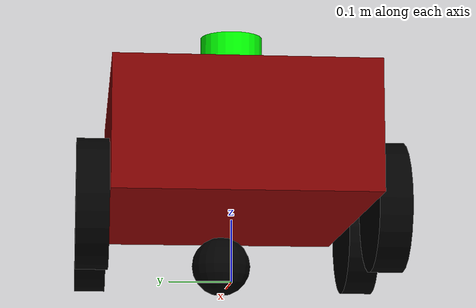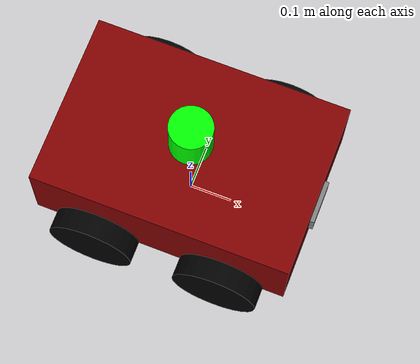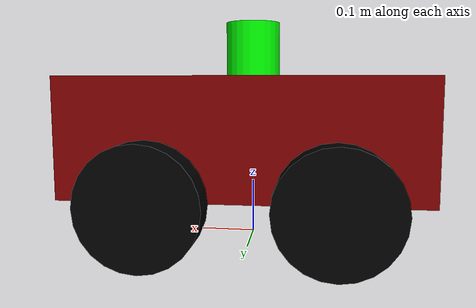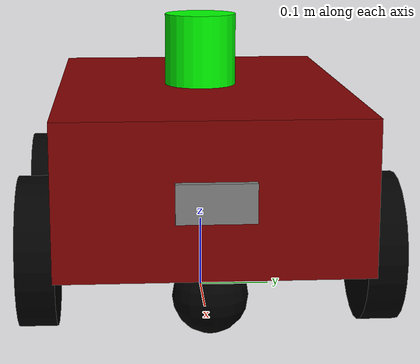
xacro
<?xml version="1.0"?>
<robot name="my_mobile" xmlns:xacro="http://www.ros.org/wiki/xacro">

   <xacro:include filename="common_properties.xacro" />
   <xacro:include filename="mobile_base.xacro" />
   <xacro:include filename="mobile_base_gazebo.xacro" />
    <xacro:include filename="camera.xacro" />
    <xacro:include filename="lidar.xacro" />

   </robot>

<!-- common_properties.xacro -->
<robot name="my_mobile" xmlns:xacro="http://www.ros.org/wiki/xacro">

  <!-- Materials -->
  <material name="maroon">
    <color rgba="0.5 0 0 1"/> <!-- Base = Maroon -->
  </material>

  <material name="black">
    <color rgba="0 0 0 1"/> <!-- Wheels = Black -->
  </material>

  <material name="grey">
    <color rgba="0.5 0.5 0.5 1"/> <!-- Caster wheel = Grey -->
  </material>

  <!-- Inertia Macros -->
  <xacro:macro name="box_inertia" params="m l w h xyz rpy">
    <inertial>
      <origin xyz="${xyz}" rpy="${rpy}" />
      <mass value="${m}" />
      <inertia ixx="${(m/12) * (h*h + l*l)}" ixy="0" ixz="0"
               iyy="${(m/12) * (w*w + l*l)}" iyz="0"
               izz="${(m/12) * (w*w + h*h)}" />
    </inertial>
  </xacro:macro>

  <xacro:macro name="cylinder_inertia" params="m r h xyz rpy">
    <inertial>
      <origin xyz="${xyz}" rpy="${rpy}" />
      <mass value="${m}" />
      <inertia ixx="${(m/12) * (3*r*r + h*h)}" ixy="0" ixz="0"
               iyy="${(m/12) * (3*r*r + h*h)}" iyz="0"
               izz="${(m/2) * (r*r)}" />
    </inertial>
  </xacro:macro>

  <xacro:macro name="sphere_inertia" params="m r xyz rpy">
    <inertial>
      <origin xyz="${xyz}" rpy="${rpy}" />
      <mass value="${m}" />
      <inertia ixx="${(2/5) * m * r * r}" ixy="0" ixz="0"
               iyy="${(2/5) * m * r * r}" iyz="0"
               izz="${(2/5) * m * r * r}" />
    </inertial>
  </xacro:macro>

</robot>

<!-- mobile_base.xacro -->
<robot name="my_mobile" xmlns:xacro="http://www.ros.org/wiki/xacro">
    <xacro:property name="base_length" value="0.6" />
    <xacro:property name="base_width" value="0.4" />
    <xacro:property name="base_height" value="0.2" />
    <xacro:property name="wheel_radius" value="0.1" />
    <xacro:property name="wheel_length" value="0.05" />

    <link name="base_footprint" />

    <!-- Base Link -->
    <link name="base_link">
        <visual>
            <geometry>
                <box size="${base_length} ${base_width} ${base_height}" />
            </geometry>
            <origin xyz="0 0 ${base_height / 2.0}" rpy="0 0 0" />
            <material name="maroon">
                <color rgba="0.5 0 0 1"/>
            </material>
        </visual>
        <collision>
            <geometry>
                <box size="${base_length} ${base_width} ${base_height}" />
            </geometry>
            <origin xyz="0 0 ${base_height / 2.0}" rpy="0 0 0" />
        </collision>

        <xacro:box_inertia m="5.0" l="${2*base_length}" w="${2*base_width}" h="${2*base_height}"
                           xyz="0 0 ${base_height / 2.0}" rpy="0 0 0" />
    </link>

    <!-- Wheel Macro -->
    <xacro:macro name="wheel_link" params="prefix color">
        <link name="${prefix}_wheel_link">
            <visual>
                <geometry>
                    <cylinder radius="${wheel_radius}" length="${wheel_length}" />
                </geometry>
                <origin xyz="0 0 0" rpy="${pi / 2.0} 0 0" />
                <material name="${prefix}_color">
                    <color rgba="${color}"/>
                </material>
            </visual>
            <collision>
                <geometry>
                    <cylinder radius="${wheel_radius}" length="${wheel_length}" />
                </geometry>
                <origin xyz="0 0 0" rpy="${pi / 2.0} 0 0" />
            </collision>
            <xacro:cylinder_inertia m="1.0" r="${2*wheel_radius}" h="${2*wheel_length}"
                                    xyz="0 0 0" rpy="${pi / 2.0} 0 0" />
        </link>
    </xacro:macro>

    <!-- Right & Left Wheels with Different Colors -->
    <xacro:wheel_link prefix="right" color="0 0 0 1"/>  <!-- Blue -->
    <xacro:wheel_link prefix="left" color="0 0 0 1"/>   <!-- Green -->
    <xacro:wheel_link prefix="front_right" color="0 0 0 1"/>  <!-- Red -->
    <xacro:wheel_link prefix="front_left" color="0 0 0 1"/>   <!-- Yellow -->

    <!-- Caster Wheel -->
    <link name="caster_wheel_link">
        <visual>
            <geometry>
                <sphere radius="${wheel_radius / 2.0}" />
            </geometry>
            <origin xyz="0 0 0" rpy="0 0 0" />
            <material name="black">
                <color rgba="0 0 0 1"/>
            </material>
        </visual>
        <collision>
            <geometry>
                <sphere radius="${wheel_radius / 2.0}" />
            </geometry>
            <origin xyz="0 0 0" rpy="0 0 0" />
        </collision>

        <xacro:sphere_inertia m="0.5" r="${2*wheel_radius / 2.0}"
                              xyz="0 0 0" rpy="0 0 0" />
    </link>

    <!-- Joints -->
    <joint name="base_joint" type="fixed">
        <parent link="base_footprint" />
        <child link="base_link" />
        <origin xyz="0 0 ${wheel_radius}" rpy="0 0 0"/>
    </joint>

    <joint name="base_right_wheel_joint" type="continuous">
        <parent link="base_link" />
        <child link="right_wheel_link" />
        <origin xyz="${-base_length / 4.0} ${-(base_width + wheel_length) / 2.0} 0" rpy="0 0 0" />
        <axis xyz="0 1 0" />
    </joint>

    <joint name="base_left_wheel_joint" type="continuous">
        <parent link="base_link" />
        <child link="left_wheel_link" />
        <origin xyz="${-base_length / 4.0} ${(base_width + wheel_length) / 2.0} 0" rpy="0 0 0" />
        <axis xyz="0 1 0" />
    </joint>

    <joint name="base_caster_wheel_joint" type="fixed">
        <parent link="base_link" />
        <child link="caster_wheel_link" />
        <origin xyz="${base_length / 3.0} 0 ${-wheel_radius / 2.0}" rpy="0 0 0" />
    </joint>

    <!-- Front Right Wheel Joint -->
    <joint name="base_to_front_right_wheel_joint" type="continuous">
        <parent link="base_link"/>
        <child link="front_right_wheel_link"/>
        <origin xyz="0.15 -${(base_width/2) + (wheel_length/2)} 0" rpy="0 0 0"/>
        <axis xyz="0 1 0"/>
    </joint>

    <!-- Front Left Wheel Joint -->
    <joint name="base_to_front_left_wheel_joint" type="continuous">
        <parent link="base_link"/>
        <child link="front_left_wheel_link"/>
        <origin xyz="0.15 ${(base_width/2) + (wheel_length/2)} 0" rpy="0 0 0"/>
        <axis xyz="0 1 0"/>
</joint>

</robot>

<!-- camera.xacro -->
<robot xmlns:xacro="http://www.ros.org/wiki/xacro">

    <xacro:property name="camera_length" value="0.01" />
    <xacro:property name="camera_width" value="0.1" />
    <xacro:property name="camera_height" value="0.05" />

    <link name="camera_link">
        <visual>
            <geometry>
                <box size="${camera_length} ${camera_width} ${camera_height}" />
            </geometry>
            <material name="grey" />
        </visual>
        <collision>
            <geometry>
                <box size="${camera_length} ${camera_width} ${camera_height}" />
            </geometry>
        </collision>
        <xacro:box_inertia m="0.1" l="${camera_length}" w="${camera_width}" h="${camera_height}"
                           xyz="0 0 0" rpy="0 0 0" />
    </link>

    <joint name="base_camera_joint" type="fixed">
        <parent link="base_link" />
        <child link="camera_link" />
        <origin xyz="${(base_length + camera_length) / 2.0} 0 ${base_height / 2.0}" rpy="0 0 0" />
    </joint>

    <link name="camera_link_optical">
    </link>

    <joint name="camera_optical_joint" type="fixed">
        <origin xyz="0 0 0" rpy="${-pi/2} 0 ${-pi/2}"/>
        <parent link="camera_link"/>
        <child link="camera_link_optical"/>
    </joint>

    <gazebo reference="camera_link">
        <material>Gazebo/Red</material>
        <sensor name="camera_sensor" type="camera">
            <pose>0 0 0 0 0 0</pose>
            <visualize>true</visualize>
            <update_rate>10.0</update_rate>
            <plugin name="camera_controller" filename="libgazebo_ros_camera.so">
                <frame_name>camera_link_optical</frame_name>
            </plugin>
        </sensor>
    </gazebo>

</robot>

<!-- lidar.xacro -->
<robot xmlns:xacro="http://www.ros.org/wiki/xacro">

  <!-- LIDAR LINK -->
  <link name="lidar_link">
    <visual>
      <geometry>
        <cylinder radius="0.05" length="0.1"/>
      </geometry>
      <origin xyz="0 0 0" rpy="0 0 0"/>
      <material name="green">
        <color rgba="0 1 0 1"/>
      </material>
    </visual>

    <collision>
      <geometry>
        <cylinder radius="0.05" length="0.1"/>
      </geometry>
      <origin xyz="0 0 0.05" rpy="0 0 0"/>
    </collision>

    <xacro:cylinder_inertia m="1.0" r="0.05" h="0.1" xyz="0 0 0.05" rpy="0 0 0"/>
  </link>

  <!-- JOINT TO ATTACH TO BASE -->
  <joint name="base_to_lidar_joint" type="fixed">
    <parent link="base_link"/>
    <child link="lidar_link"/>
    <origin xyz="0 0 ${base_height + 0.05}" rpy="0 0 0"/>
  </joint>

  <!-- GAZEBO LIDAR SENSOR PLUGIN -->
  <gazebo reference="lidar_link">
    <material>Gazebo/Blue</material>
    <sensor type="ray" name="lidar_sensor">
      <pose>0 0 0 0 0 0</pose>
      <visualize>true</visualize>
      <update_rate>10</update_rate>
      <ray>
        <scan>
          <horizontal>
            <samples>360</samples>
            <resolution>1</resolution>
            <min_angle>-3.14159</min_angle>
            <max_angle>3.14159</max_angle>
          </horizontal>
        </scan>
        <range>
          <min>0.12</min>
          <max>8.0</max>
          <resolution>0.01</resolution>
        </range>
        <noise>
          <type>gaussian</type>
          <mean>0.0</mean>
          <stddev>0.01</stddev>
        </noise>
      </ray>

      <plugin name="gazebo_ros_lidar" filename="libgazebo_ros_ray_sensor.so">
        <ros>
          <namespace>/</namespace>
          <topicName>/scan</topicName> <!-- Fixed topic name -->
        </ros>
        <output_type>sensor_msgs/LaserScan</output_type>
        <frame_name>lidar_link</frame_name>
      </plugin>
    </sensor>
  </gazebo>

  <!-- Optional: Gazebo colors for robot parts -->
  <gazebo reference="left_wheel_link">
    <material>Gazebo/Black</material>
  </gazebo>
  <gazebo reference="right_wheel_link">
    <material>Gazebo/Black</material>
  </gazebo>
  <gazebo reference="base_link">
    <material>Gazebo/Red</material>
  </gazebo>

</robot>
